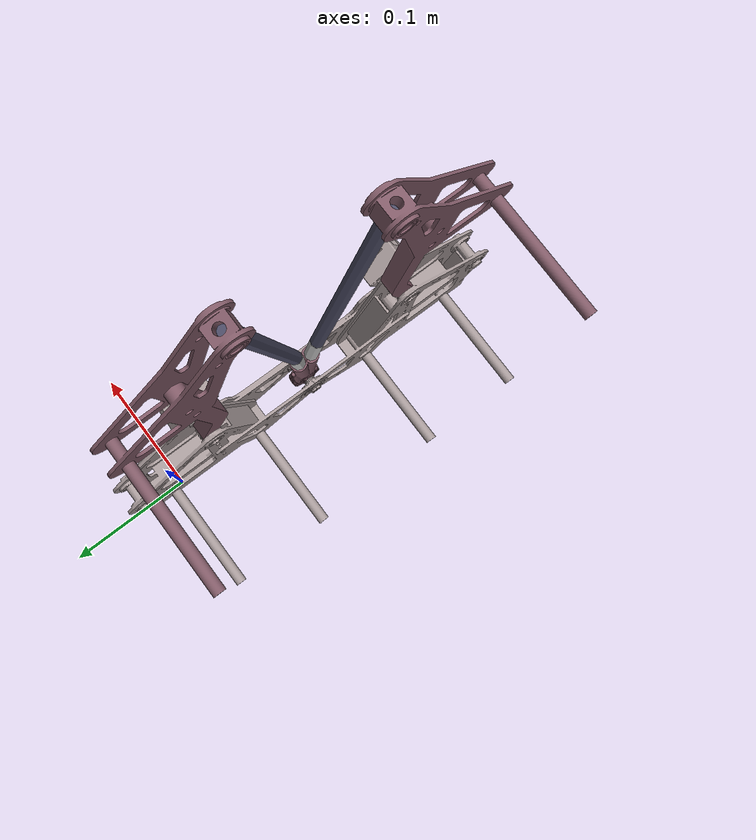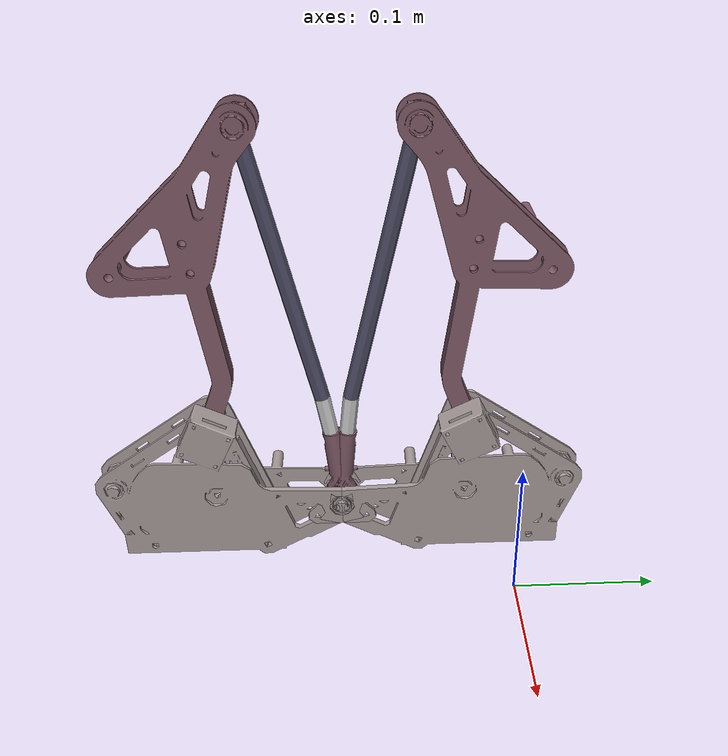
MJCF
<mujoco model="UTAnkleExoL2">
    <compiler angle="radian" />

    <default class="main">
        <default class="ut_exo_dx">
            <geom margin="0.001" rgba="0.5 0.35 0.4 1" conaffinity="0" contype="0" />
            <joint armature="0.00001" limited="true" />
            <tendon rgba=".3 .3 .4 1" width=".005" limited="true" />
            <default class="ut_exo_coll_dx">
                <geom type="capsule" group="4" contype="1" conaffinity="0" condim="3" rgba="0.5 0.6 .7 .4" margin="0.001" />
            </default>
        </default>
        <default class="ut_exo_sx">
            <geom margin="0.001" rgba="0.5 0.35 0.4 1" conaffinity="0" contype="0" />
            <joint armature="0.00001" limited="true" />
            <tendon rgba=".3 .3 .4 1" width=".005" limited="true" />
            <default class="ut_exo_coll_sx">
                <geom type="capsule" group="4" contype="1" conaffinity="0" condim="3" rgba="0.5 0.6 .7 .4" margin="0.001" />
            </default>
        </default>
    </default>

    <asset>
        <mesh name="part1_dx" file="mesh/part1_zaxis_no_spring.stl" scale=".001 .001 .001" />
        <mesh name="part2_dx" file="mesh/part2_zaxis.stl" scale=".001 .001 .001" />
        <mesh name="part3_dx" file="mesh/part3_zaxis.stl" scale=".001 .001 .001" />
        <mesh name="part1_sx" file="mesh/part1_zaxis_no_spring.stl" scale="-.001 .001 .001" />
        <mesh name="part2_sx" file="mesh/part2_zaxis.stl" scale="-.001 .001 .001" />
        <mesh name="part3_sx" file="mesh/part3_zaxis.stl" scale="-.001 .001 .001" />
    </asset>

    <worldbody>

        <body name="part3_dx" pos="0 0 0.05" euler="0 0 1.57" childclass="ut_exo_dx">
            <freejoint name="utexo_root_dx" />
            <inertial pos="-0.044085 0.000792 0.050867" mass="0.4455" fullinertia="0.5817e-03 1.0000e-03 0.8725e-03 -0.0221e-03 -0.0094e-03 -0.1075e-03" />
            <geom type="mesh" mesh="part3_dx" class="ut_exo_dx" pos="-.12 0 0.0375" euler="1.57 0 0" rgba="0.65 0.6 0.6 1" />
            <geom type="box" size=".075 .015 .05" pos="-0.05 0 0.05" class="ut_exo_coll_dx" />
            <site name="part3_to_part1_on_parent_dx" pos="-.12 0 0.04" rgba="0 1 0 1" group="4" />
            <site name="constraint_tibia" pos=".012 .06 .2" size="0.015" rgba="0 1 0 1" group="5" />

            <body name="part2_dx" pos="-.005 0 0.0975" euler="0 0 0">
                <inertial pos="-0.03022 -0.002767 0.095074" mass="0.318" fullinertia="0.8018e-03 0.8480e-03 0.2663e-03 -0.0728e-03 0.0101e-03 0.0116e-03" />
                <geom type="mesh" mesh="part2_dx" class="ut_exo_dx" pos="-0.035 0 0" euler="1.57 0 0" />
                <geom type="box" size=".04 .01 .1" pos="-.015 0 0.1" class="ut_exo_coll_dx" />
                <joint name="joint2_dx" pos="-0.035 0 0" axis="0 1 0" range="-.86 .52" damping="0.1" />
                <site name="part2_attach_dx" pos="-.067 0 0.185" rgba="0 1 1 1" group="4" />
                <site name="part2_to_part3_encoder_dx" pos="-.035 0 0" rgba="0 1 0 1" group="4" />
                <site name="constraint_talus" pos=".01 .07 -0.085" size="0.015" rgba="1 0 0 1" group="5" />
                <site name="constraint_calcagno" pos="-0.06 .07 -0.085" size="0.015" rgba="1 1 0 1" group="5" />
            </body>

            <body name="part1_dx" pos="-.09 0 0.0375" euler="0 0 0">
                <inertial pos="-0.026204 -0.000454 0.047435" mass="0.1832" fullinertia="0.2253e-03 0.2340e-03 0.0222e-03 0 -0.0409e-03 0" />
                <geom type="mesh" mesh="part1_dx" class="ut_exo_dx" pos="-.03 0 0" euler="1.57 0 3.04" />
                <joint name="joint1_dx" pos="-.03 0 0" axis="0 1 0" range="-.7 0.55" damping="0.1" />
                <site name="part1_attach_dx" pos="-0.026 0 0.04" rgba="1 0 0 1" group="4" />
                <site name="part3_attach_dx" pos="-0.022 0 0.0748" group="4" />
                <site name="part3_to_part1_on_part1_dx" pos="-0.03 0 0.0" size="0.01" rgba="0 0 0 1" group="4" />
            </body>
        </body>

        <body name="part3_sx" pos="0 0 0.05" euler="0 0 1.57" childclass="ut_exo_sx">
            <freejoint name="utexo_root_sx" />
            <inertial pos="-0.194085 0.000792 0.050867" mass="0.4455" fullinertia="0.5817e-03 1.0000e-03 0.8725e-03 -0.0221e-03 -0.0094e-03 -0.1075e-03" />
            <geom type="mesh" mesh="part3_sx" class="ut_exo_sx" pos="-0.12 0 0.0375" euler="1.57 0 0" rgba="0.65 0.6 0.6 1" />
            <geom type="box" size=".075 .015 .05" pos="-0.192 0 0.05" class="ut_exo_coll_sx" />
            <site name="part3_to_part1_on_parent_sx" pos="-.12 0 0.04" rgba="0 1 0 1" group="4" />

            <body name="part2_sx" pos="-.005 0 0.0975" euler="0 0 0">
                <inertial pos="-0.1922 -0.002767 0.095074" mass="0.318" fullinertia="0.8018e-03 0.8480e-03 0.2663e-03 0.0728e-03 0.0101e-03 0.0116e-03" />
                <geom type="mesh" mesh="part2_sx" class="ut_exo_sx" pos="-0.195 0.0005 0" euler="1.57 0 0" />
                <geom type="box" size=".04 .01 .1" pos="-.215 0 0.1" class="ut_exo_coll_sx" />
                <joint name="joint2_sx" pos="-0.195 0.0005 0" axis="0 -1 0" range="-.86 .52" damping="0.2" />
                <site name="part2_attach_sx" pos="-.164 0 0.185" rgba="0 1 1 1" group="4" />
                <site name="part2_to_part3_encoder_sx" pos="-0.195 0.0005 0" rgba="0 1 0 1" group="4" />
            </body>

            <body name="part1_sx" pos="-.09 0 0.0375" euler="0 0 0">
                <inertial pos="-0.035204 -0.000454 0.047435" mass="0.1832" fullinertia="0.2253e-03 0.2340e-03 0.0222e-03 0 0.0409e-03 0" />
                <geom type="mesh" mesh="part1_sx" class="ut_exo_sx" pos="-.03 0 0" euler="1.57 0 -3.04" />
                <joint name="joint1_sx" pos="-.03 0 0" axis="0 -1 0" range="-0.7 0.55" damping="0.1" />
                <site name="part1_attach_sx" pos="-0.034 0 0.04" rgba="1 0 0 1" group="4" />
                <site name="part3_attach_sx" pos="-0.04 0 0.0748" group="4" />
                <site name="part3_to_part1_on_part1_sx" pos="-0.03 0 0.0" rgba="0 0 0 1" group="4" />
            </body>
        </body>
    </worldbody>

    <tendon>

        <spatial name="part2part3attach_dx" range="0.04 0.06" class="ut_exo_dx" stiffness="25000" solreflimit="0.002 1.0" solimplimit="0.9 0.95 0.01" rgba="0.8 0.8 0.8 1.0">
            <site site="part1_attach_dx" />
            <site site="part3_attach_dx" />
        </spatial>
        <spatial name="part3part4attach_dx" limited="false" class="ut_exo_dx">
            <site site="part3_attach_dx" />
            <site site="part2_attach_dx" />
        </spatial>

        <spatial name="part2part3attach_sx" range="0.04 0.06" class="ut_exo_sx" stiffness="25000" solreflimit="0.002 1.0" solimplimit="0.9 0.95 0.01" rgba="0.8 0.8 0.8 1.0">
            <site site="part1_attach_sx" />
            <site site="part3_attach_sx" />
        </spatial>
        <spatial name="part3part4attach_sx" limited="false" class="ut_exo_sx">
            <site site="part3_attach_sx" />
            <site site="part2_attach_sx" />
        </spatial>
    </tendon>

    <actuator>
        <general name="part2part3act_dx" tendon="part3part4attach_dx" ctrlrange="-1 0.00" dyntype="filter" dynprm="0.07" gainprm="600.0" biastype="none" />
        <general name="part2part3act_sx" tendon="part3part4attach_sx" ctrlrange="-1 0.00" dyntype="filter" dynprm="0.07" gainprm="600.0" biastype="none" />
    </actuator>
</mujoco>
